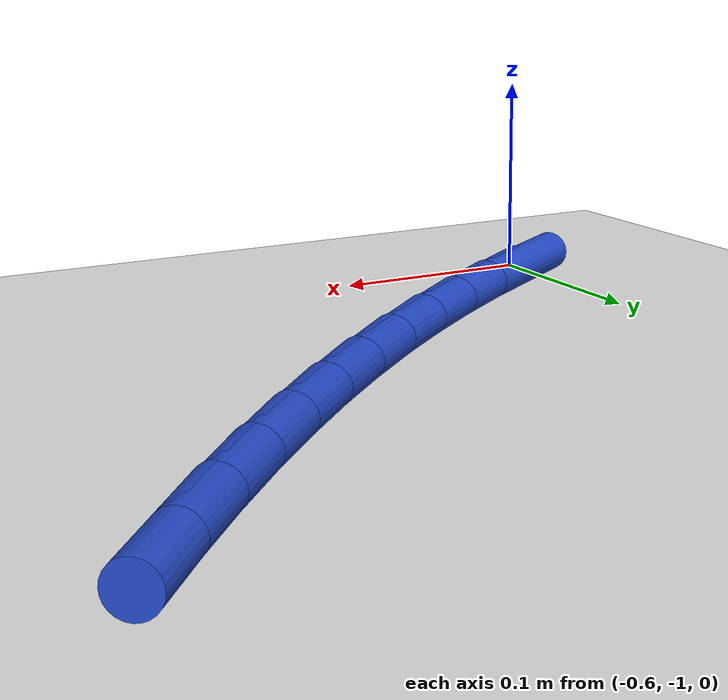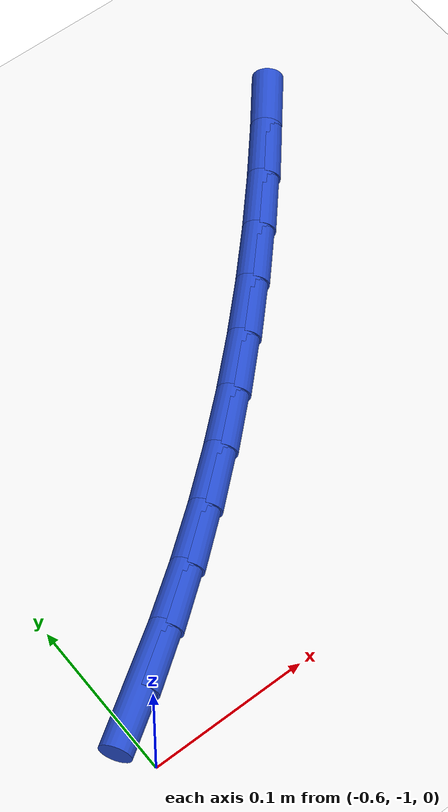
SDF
<sdf version="1.6">
 <world name="default">
  <model name="ground_plane">
   <static>1</static>
   <link name="link">
    <collision name="collision">
     <geometry><plane><normal>0 0 1</normal><size>100 100</size></plane></geometry>
     <surface><friction><ode><mu>100</mu><mu2>50</mu2></ode></friction></surface>
    </collision>
    <visual name="visual">
     <cast_shadows>0</cast_shadows>
     <geometry><plane><normal>0 0 1</normal><size>100 100</size></plane></geometry>
     <material>
      <script><uri>file://media/materials/scripts/gazebo.material</uri><name>Gazebo/WhiteGlow</name></script>
     </material>
    </visual>
   </link>
  </model>
  <model name="line">
   <link name="link_140">
    <pose>-0.5811692396804201 -0.9617572646516259 0.01 0 1.57 0.5711529282616546</pose>
    <collision name="collision">
     <geometry><cylinder><radius>0.01</radius><length>0.08</length></cylinder></geometry>
    </collision>
    <visual name="visual">
     <material>
      <script><name>Gazebo/Blue</name><uri>file://media/materials/scripts/gazebo.material</uri></script>
     </material>
     <geometry><cylinder><radius>0.01</radius><length>0.08</length></cylinder></geometry>
    </visual>
   </link>
   <link name="link_141">
    <pose>-0.5484717860198837 -0.940746000161923 0.01 0 1.57 0.6081209154907439</pose>
    <collision name="collision">
     <geometry><cylinder><radius>0.01</radius><length>0.08</length></cylinder></geometry>
    </collision>
    <visual name="visual">
     <material>
      <script><name>Gazebo/Blue</name><uri>file://media/materials/scripts/gazebo.material</uri></script>
     </material>
     <geometry><cylinder><radius>0.01</radius><length>0.08</length></cylinder></geometry>
    </visual>
   </link>
   <link name="link_142">
    <pose>-0.5165473931270047 -0.9185226151245441 0.01 0 1.57 0.6433915031837</pose>
    <collision name="collision">
     <geometry><cylinder><radius>0.01</radius><length>0.08</length></cylinder></geometry>
    </collision>
    <visual name="visual">
     <material>
      <script><name>Gazebo/Blue</name><uri>file://media/materials/scripts/gazebo.material</uri></script>
     </material>
     <geometry><cylinder><radius>0.01</radius><length>0.08</length></cylinder></geometry>
    </visual>
   </link>
   <link name="link_143">
    <pose>-0.485387801582549 -0.8951582573807542 0.01 0 1.57 0.6769780161995388</pose>
    <collision name="collision">
     <geometry><cylinder><radius>0.01</radius><length>0.08</length></cylinder></geometry>
    </collision>
    <visual name="visual">
     <material>
      <script><name>Gazebo/Blue</name><uri>file://media/materials/scripts/gazebo.material</uri></script>
     </material>
     <geometry><cylinder><radius>0.01</radius><length>0.08</length></cylinder></geometry>
    </visual>
   </link>
   <link name="link_144">
    <pose>-0.45498475196728017 -0.8707240747718171 0.01 0 1.57 0.7089078386961063</pose>
    <collision name="collision">
     <geometry><cylinder><radius>0.01</radius><length>0.08</length></cylinder></geometry>
    </collision>
    <visual name="visual">
     <material>
      <script><name>Gazebo/Blue</name><uri>file://media/materials/scripts/gazebo.material</uri></script>
     </material>
     <geometry><cylinder><radius>0.01</radius><length>0.08</length></cylinder></geometry>
    </visual>
   </link>
   <link name="link_145">
    <pose>-0.4253299848619623 -0.8452912151389967 0.01 0 1.57 0.7392193646273406</pose>
    <collision name="collision">
     <geometry><cylinder><radius>0.01</radius><length>0.08</length></cylinder></geometry>
    </collision>
    <visual name="visual">
     <material>
      <script><name>Gazebo/Blue</name><uri>file://media/materials/scripts/gazebo.material</uri></script>
     </material>
     <geometry><cylinder><radius>0.01</radius><length>0.08</length></cylinder></geometry>
    </visual>
   </link>
   <link name="link_146">
    <pose>-0.3964152408473601 -0.8189308263235582 0.01 0 1.57 0.7679592358047478</pose>
    <collision name="collision">
     <geometry><cylinder><radius>0.01</radius><length>0.08</length></cylinder></geometry>
    </collision>
    <visual name="visual">
     <material>
      <script><name>Gazebo/Blue</name><uri>file://media/materials/scripts/gazebo.material</uri></script>
     </material>
     <geometry><cylinder><radius>0.01</radius><length>0.08</length></cylinder></geometry>
    </visual>
   </link>
   <link name="link_147">
    <pose>-0.36823226050423713 -0.7917140561667648 0.01 0 1.57 0.7951799121873621</pose>
    <collision name="collision">
     <geometry><cylinder><radius>0.01</radius><length>0.08</length></cylinder></geometry>
    </collision>
    <visual name="visual">
     <material>
      <script><name>Gazebo/Blue</name><uri>file://media/materials/scripts/gazebo.material</uri></script>
     </material>
     <geometry><cylinder><radius>0.01</radius><length>0.08</length></cylinder></geometry>
    </visual>
   </link>
   <link name="link_148">
    <pose>-0.34077278441335895 -0.7637120525098824 0.01 0 1.57 0.8209375865749597</pose>
    <collision name="collision">
     <geometry><cylinder><radius>0.01</radius><length>0.08</length></cylinder></geometry>
    </collision>
    <visual name="visual">
     <material>
      <script><name>Gazebo/Blue</name><uri>file://media/materials/scripts/gazebo.material</uri></script>
     </material>
     <geometry><cylinder><radius>0.01</radius><length>0.08</length></cylinder></geometry>
    </visual>
   </link>
   <link name="link_149">
    <pose>-0.31402855315548905 -0.7349959631941739 0.01 0 1.57 0.8452904327616614</pose>
    <collision name="collision">
     <geometry><cylinder><radius>0.01</radius><length>0.08</length></cylinder></geometry>
    </collision>
    <visual name="visual">
     <material>
      <script><name>Gazebo/Blue</name><uri>file://media/materials/scripts/gazebo.material</uri></script>
     </material>
     <geometry><cylinder><radius>0.01</radius><length>0.08</length></cylinder></geometry>
    </visual>
   </link>
   <link name="link_150">
    <pose>-0.287991307311392 -0.7056369360609044 0.01 0 1.57 0.8682971611743012</pose>
    <collision name="collision">
     <geometry><cylinder><radius>0.01</radius><length>0.08</length></cylinder></geometry>
    </collision>
    <visual name="visual">
     <material>
      <script><name>Gazebo/Blue</name><uri>file://media/materials/scripts/gazebo.material</uri></script>
     </material>
     <geometry><cylinder><radius>0.01</radius><length>0.08</length></cylinder></geometry>
    </visual>
   </link>
  </model>
 </world>
</sdf>
